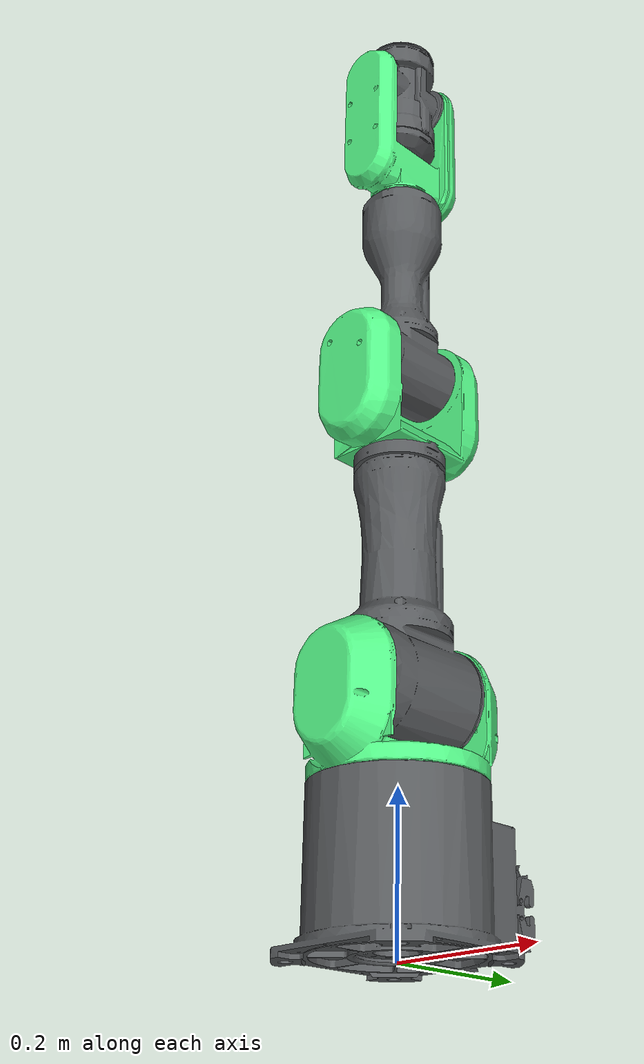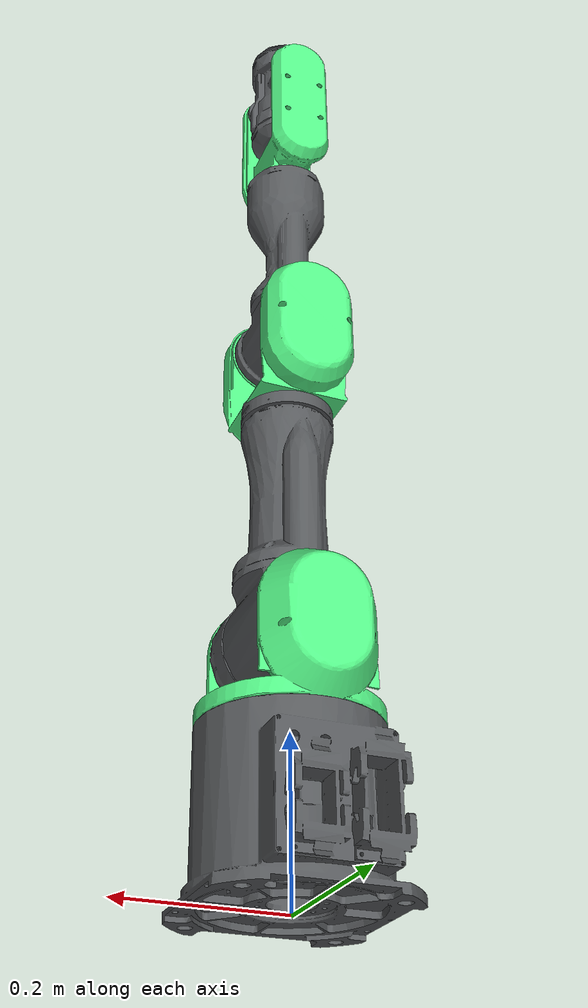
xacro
<?xml version="1.0" ?>

<robot name="pa10" xmlns:xacro="http://www.ros.org/wiki/xacro">

	<!-- Used for fixing robot to Gazebo 'base_link' -->
  <link name="world"/>

  <joint name="fixed" type="fixed">
    <parent link="world"/>
    <child link="base_link"/>
  </joint>

	<!-- Import all Gazebo-customization elements, including Gazebo colors -->
  <xacro:include filename="$(find pa10_description)/urdf/pa10.gazebo" />
  <!-- Import Rviz colors -->
  <xacro:include filename="$(find pa10_description)/urdf/materials.xacro" />

  <link name="base_link">
    <visual>
      <origin rpy="0 0 3.14" xyz="0 0 0"/>
      <geometry>
        <mesh filename="$(find pa10_description)/pa10_stl/S1.stl"/>

<!-- podemos usar tambien en vez de mesh que requiere un archivo, cilindros cajas o esferas!!! -->

      </geometry>
      <material name="">
        <color rgba="0.34 0.35 0.36 1.0"/>
      </material>
    </visual>
    <collision>
      <origin rpy="0 0 3.14" xyz="0 0 0"/>
      <geometry>
        <mesh filename="$(find pa10_description)/pa10_stl_collision/S1_collision.stl"/>
      </geometry>
    </collision>
    <inertial>
      <origin xyz="0 0 1" rpy="0 0 0"/>
      <mass value="1"/>
      <inertia
	  ixx="1" ixy="0.0" ixz="0.0"
	  iyy="1" iyz="0.0"
	  izz="1"/>
    </inertial>
  </link>
<link name="link_1">
    <visual>
      <origin rpy="0 0 0" xyz="0 0 0.117"/>
      <geometry>
        <mesh filename="$(find pa10_description)/pa10_stl/S2.stl"/>

      </geometry>
	<material name="">
        <color rgba="0.33 0.96 0.53 1.5"/>
      </material>
    </visual>
    <collision>
      <origin rpy="0 0 0" xyz="0 0 0.117"/>
      <geometry>
        <mesh filename="$(find pa10_description)/pa10_stl_collision/S2_collision.stl"/>
      </geometry>
    </collision>
    <inertial>
      <origin xyz="0 0 1" rpy="0 0 0"/>
      <mass value="1"/>
      <inertia
	  ixx="1" ixy="0.0" ixz="0.0"
	  iyy="1" iyz="0.0"
	  izz="1"/>
    </inertial>
  </link>
<link name="link_2">
    <visual>
      <origin rpy="0 0 0" xyz="0 0 0"/>
      <geometry>
        <mesh filename="$(find pa10_description)/pa10_stl/S3.stl"/>

      </geometry>
      <material name="">
        <color rgba="0.34 0.35 0.36 1.0"/>
      </material>
    </visual>
    <collision>
      <origin rpy="0 0 0" xyz="0 0 0"/>
      <geometry>
        <mesh filename="$(find pa10_description)/pa10_stl_collision/S3_collision.stl"/>
      </geometry>
    </collision>
    <inertial>
      <origin xyz="0 0 1" rpy="0 0 0"/>
      <mass value="1"/>
      <inertia
	  ixx="1" ixy="0.0" ixz="0.0"
	  iyy="1" iyz="0.0"
	  izz="1"/>
    </inertial>
  </link>
<link name="link_3">
    <visual>
      <origin rpy="0 0 0" xyz="0 0 0.133"/>
      <geometry>
        <mesh filename="$(find pa10_description)/pa10_stl/E1.stl"/>

      </geometry>
	<material name="">
        <color rgba="0.33 0.96 0.53 1.5"/>
      </material>
    </visual>
    <collision>
      <origin rpy="0 0 0" xyz="0 0 0.133"/>
      <geometry>
        <mesh filename="$(find pa10_description)/pa10_stl_collision/E1_collision.stl"/>
      </geometry>
    </collision>
    <inertial>
      <origin xyz="0 0 1" rpy="0 0 0"/>
      <mass value="1"/>
      <inertia
	  ixx="1" ixy="0.0" ixz="0.0"
	  iyy="1" iyz="0.0"
	  izz="1"/>
    </inertial>
  </link>
<link name="link_4">
    <visual>
      <origin rpy="0 0 0" xyz="0 0.003 0"/>
      <geometry>
        <mesh filename="$(find pa10_description)/pa10_stl/E2.stl"/>

      </geometry>
	<material name="">
        <color rgba="0.34 0.35 0.36 1.0"/>
      </material>
    </visual>
    <collision>
      <origin rpy="0 0 0" xyz="0 0.003 0"/>
      <geometry>
        <mesh filename="$(find pa10_description)/pa10_stl_collision/E2_collision.stl"/>
      </geometry>
    </collision>
    <inertial>
      <origin xyz="0 0 1" rpy="0 0 0"/>
      <mass value="1"/>
      <inertia
	  ixx="1" ixy="0.0" ixz="0.0"
	  iyy="1" iyz="0.0"
	  izz="1"/>
    </inertial>
  </link>
<link name="link_5">
    <visual>
      <origin rpy="0 0 0" xyz="0 0 0.195"/>
      <geometry>
        <mesh filename="$(find pa10_description)/pa10_stl/W1.stl"/>

      </geometry>
	<material name="">
        <color rgba="0.33 0.96 0.53 1.5"/>
      </material>
    </visual>
    <collision>
      <origin rpy="0 0 0" xyz="0 0 0.195"/>
      <geometry>
        <mesh filename="$(find pa10_description)/pa10_stl_collision/W1_collision.stl"/>
      </geometry>
    </collision>
    <inertial>
      <origin xyz="0 0 1" rpy="0 0 0"/>
      <mass value="1"/>
      <inertia
	  ixx="1" ixy="0.0" ixz="0.0"
	  iyy="1" iyz="0.0"
	  izz="1"/>
    </inertial>
  </link>
<link name="link_6">
    <visual>
      <origin rpy="0 0 0" xyz="0 0 0"/>
      <geometry>
        <mesh filename="$(find pa10_description)/pa10_stl/W2.stl"/>

      </geometry>
	<material name="">
        <color rgba="0.34 0.35 0.36 1.0"/>
      </material>
    </visual>
    <collision>
      <origin rpy="0 0 0" xyz="0 0 0"/>
      <geometry>
        <mesh filename="$(find pa10_description)/pa10_stl_collision/W2_collision.stl"/>
      </geometry>
    </collision>
    <inertial>
      <origin xyz="0 0 1" rpy="0 0 0"/>
      <mass value="1"/>
      <inertia
	  ixx="1" ixy="0.0" ixz="0.0"
	  iyy="1" iyz="0.0"
	  izz="1"/>
    </inertial>
  </link>

  <link name = "ee_link"/>

<joint name="S1" type="revolute">
    <origin rpy="0 0 0" xyz="0 0 0.2"/>
    <parent link="base_link"/>
    <child link="link_1"/>
    <axis xyz="0 0 1"/>
    <limit effort="0" lower="-3.089" upper="3.089" velocity="1.0"/>
  </joint>
<joint name="S2" type="revolute">
    <origin rpy="0 0 0" xyz="0 0 0.117"/>
    <parent link="link_1"/>
    <child link="link_2"/>
    <axis xyz="0 1 0"/>
    <limit effort="0" lower="-1.64" upper="1.64" velocity="1.0"/>
  </joint>
<joint name="S3" type="revolute">
    <origin rpy="0 0 0" xyz="0 0 0.317"/>
    <parent link="link_2"/>
    <child link="link_3"/>
    <axis xyz="0 0 1"/>
    <limit effort="0" lower="-3.036" upper="3.036" velocity="1.0"/>
  </joint>
<joint name="E1" type="revolute">
    <origin rpy="0 0 0" xyz="0 0 0.133"/>
    <parent link="link_3"/>
    <child link="link_4"/>
    <axis xyz="0 1 0"/>
    <limit effort="0" lower="-2.39" upper="2.39" velocity="1.0"/>
  </joint>
<joint name="E2" type="revolute">
    <origin rpy="0 0 0" xyz="0 0 0.285"/>
    <parent link="link_4"/>
    <child link="link_5"/>
    <axis xyz="0 0 1"/>
    <limit effort="0" lower="-4.45" upper="4.45" velocity="1.0"/>
  </joint>
<joint name="W1" type="revolute">
    <origin rpy="0 0 0" xyz="0 0 0.195"/>
    <parent link="link_5"/>
    <child link="link_6"/>
    <axis xyz="0 1 0"/>
    <limit effort="0" lower="-2.878" upper="2.878" velocity="1.0"/>
  </joint>
  <joint name = "W2" type="revolute">
    <origin rpy="0 0 0" xyz="0 0 0"/>
    <parent link="link_6"/>
    <child link="ee_link"/>
    <axis xyz="0 0 1"/>
    <limit effort="0" lower="-2.878" upper="2.878" velocity="1.0"/>
  </joint>

</robot>

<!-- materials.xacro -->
<robot>

  <material name="black">
    <color rgba="0.0 0.0 0.0 1.0"/>
  </material>

  <material name="blue">
    <color rgba="0.0 0.0 0.8 1.0"/>
  </material>

  <material name="green">
    <color rgba="0.0 0.8 0.0 1.0"/>
  </material>

  <material name="grey">
    <color rgba="0.2 0.2 0.2 1.0"/>
  </material>

	 <material name="orange">
    <color rgba="${255/255} ${108/255} ${10/255} 1.0"/>
  </material>

  <material name="brown">
    <color rgba="${222/255} ${207/255} ${195/255} 1.0"/>
  </material>

  <material name="red">
    <color rgba="0.8 0.0 0.0 1.0"/>
  </material>

  <material name="white">
    <color rgba="1.0 1.0 1.0 1.0"/>
  </material>

</robot>
